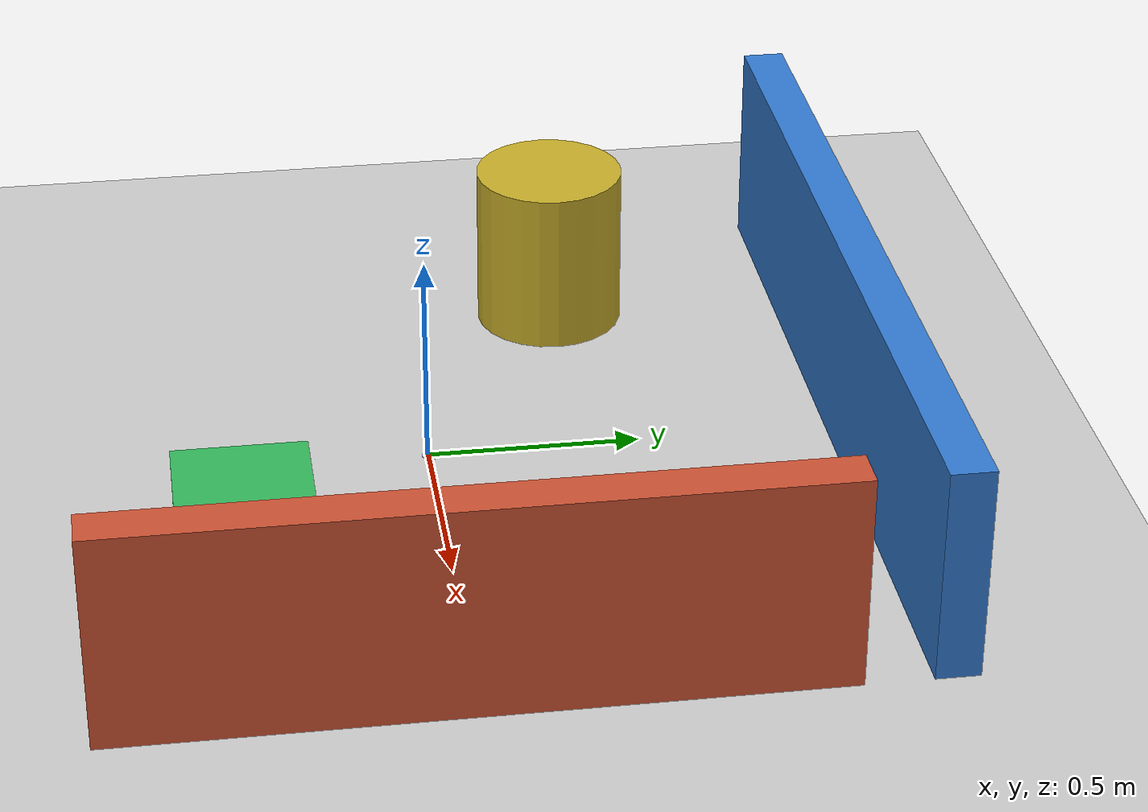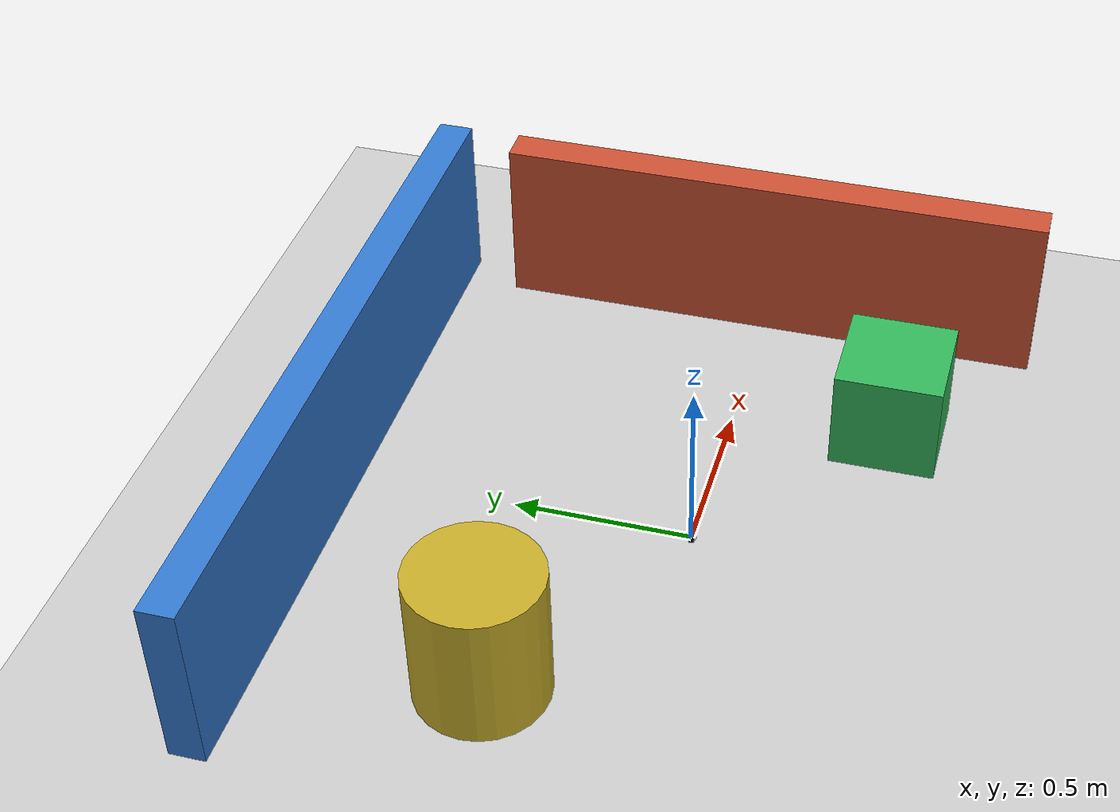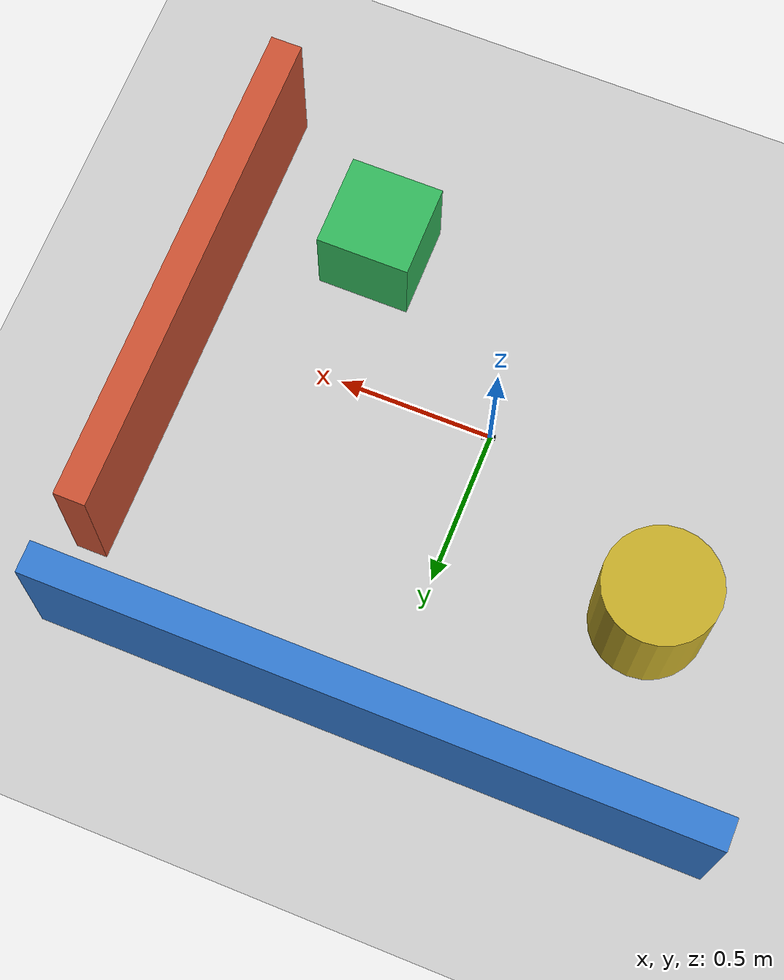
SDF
<?xml version="1.0"?>
<sdf version="1.6">
  <world name="boe_lidar_test_world">

    <plugin name="gazebo_ros_state" filename="libgazebo_ros_state.so">
      <update_rate>30.0</update_rate>
    </plugin>

    <plugin
      name="boe_caster_visual_plugin"
      filename="libboe_caster_visual_plugin.so"/>

    <include>
      <uri>model://ground_plane</uri>
    </include>

    <include>
      <uri>model://sun</uri>
    </include>

    <model name="boe_caster_rotation_visual">
      <static>true</static>
      <link name="link">
        <visual name="visual">
          <geometry>
            <mesh>
              <uri>model://boe_robot_description/meshes/caster_rotation_link.STL</uri>
            </mesh>
          </geometry>
          <material>
            <ambient>0.796 0.824 0.937 1</ambient>
            <diffuse>0.796 0.824 0.937 1</diffuse>
          </material>
        </visual>
      </link>
    </model>

    <model name="boe_caster_wheel_visual">
      <static>true</static>
      <link name="link">
        <visual name="visual">
          <pose>0 0 0 -1.5707963268 0 0</pose>
          <geometry>
            <mesh>
              <uri>model://boe_robot_description/meshes/caster_wheel_link.STL</uri>
            </mesh>
          </geometry>
          <material>
            <ambient>0.05 0.05 0.05 1</ambient>
            <diffuse>0.05 0.05 0.05 1</diffuse>
          </material>
        </visual>
      </link>
    </model>

    <!-- Tường phía trước robot. -->
    <model name="front_wall">
      <static>true</static>
      <pose>1.0 0 0.25 0 0 0</pose>
      <link name="link">
        <collision name="collision">
          <geometry>
            <box>
              <size>0.10 1.60 0.50</size>
            </box>
          </geometry>
        </collision>
        <visual name="visual">
          <geometry>
            <box>
              <size>0.10 1.60 0.50</size>
            </box>
          </geometry>
          <material>
            <ambient>0.80 0.32 0.20 1</ambient>
            <diffuse>0.80 0.32 0.20 1</diffuse>
          </material>
        </visual>
      </link>
    </model>

    <!-- Tường bên trái tạo góc vuông để quan sát hình dạng scan. -->
    <model name="left_wall">
      <static>true</static>
      <pose>0 1.0 0.25 0 0 0</pose>
      <link name="link">
        <collision name="collision">
          <geometry>
            <box>
              <size>2.10 0.10 0.50</size>
            </box>
          </geometry>
        </collision>
        <visual name="visual">
          <geometry>
            <box>
              <size>2.10 0.10 0.50</size>
            </box>
          </geometry>
          <material>
            <ambient>0.20 0.48 0.82 1</ambient>
            <diffuse>0.20 0.48 0.82 1</diffuse>
          </material>
        </visual>
      </link>
    </model>

    <!-- Hộp nhỏ phía trước bên phải. -->
    <model name="test_box">
      <static>true</static>
      <pose>0.55 -0.45 0.15 0 0 0</pose>
      <link name="link">
        <collision name="collision">
          <geometry>
            <box>
              <size>0.30 0.30 0.30</size>
            </box>
          </geometry>
        </collision>
        <visual name="visual">
          <geometry>
            <box>
              <size>0.30 0.30 0.30</size>
            </box>
          </geometry>
          <material>
            <ambient>0.20 0.72 0.36 1</ambient>
            <diffuse>0.20 0.72 0.36 1</diffuse>
          </material>
        </visual>
      </link>
    </model>

    <!-- Trụ tròn phía sau bên trái. -->
    <model name="test_cylinder">
      <static>true</static>
      <pose>-0.65 0.38 0.20 0 0 0</pose>
      <link name="link">
        <collision name="collision">
          <geometry>
            <cylinder>
              <radius>0.18</radius>
              <length>0.40</length>
            </cylinder>
          </geometry>
        </collision>
        <visual name="visual">
          <geometry>
            <cylinder>
              <radius>0.18</radius>
              <length>0.40</length>
            </cylinder>
          </geometry>
          <material>
            <ambient>0.78 0.68 0.16 1</ambient>
            <diffuse>0.78 0.68 0.16 1</diffuse>
          </material>
        </visual>
      </link>
    </model>

    <gravity>0 0 -9.81</gravity>

    <physics name="ode_physics" type="ode">
      <max_step_size>0.001</max_step_size>
      <real_time_factor>1.0</real_time_factor>
      <real_time_update_rate>1000.0</real_time_update_rate>
      <ode>
        <solver>
          <type>world</type>
          <iters>100</iters>
          <sor>1.3</sor>
        </solver>
        <constraints>
          <cfm>0.00001</cfm>
          <erp>0.2</erp>
          <contact_max_correcting_vel>1.0</contact_max_correcting_vel>
          <contact_surface_layer>0.0001</contact_surface_layer>
        </constraints>
      </ode>
    </physics>

    <gui fullscreen="0">
      <camera name="user_camera">
        <pose>1.8 -1.8 1.20 0 0.45 2.35</pose>
        <view_controller>orbit</view_controller>
      </camera>
    </gui>

  </world>
</sdf>
